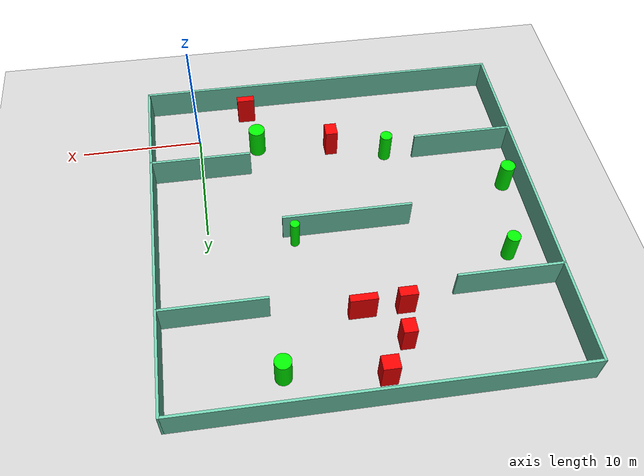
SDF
<sdf version="1.7">
 <world name="default">
  <light name="sun" type="directional">
   <pose>0 0 10 0 -0 0</pose>
   <diffuse>0.8 0.8 0.8 1</diffuse>
   <specular>0.2 0.2 0.2 1</specular>
   <attenuation>
    <range>1000</range>
    <constant>0.9</constant>
    <linear>0.01</linear>
    <quadratic>0.001</quadratic>
   </attenuation>
   <direction>-0.5 0.1 -0.9</direction>
   <spot><inner_angle>0</inner_angle><outer_angle>0</outer_angle><falloff>0</falloff></spot>
  </light>
  <model name="ground_plane">
   <static>1</static>
   <link name="link">
    <collision name="collision">
     <geometry><plane><normal>0 0 1</normal><size>100 100</size></plane></geometry>
     <surface>
      <contact><collide_bitmask>65535</collide_bitmask></contact>
      <friction><ode><mu>100</mu><mu2>50</mu2></ode></friction>
     </surface>
    </collision>
    <visual name="visual">
     <cast_shadows>0</cast_shadows>
     <geometry><plane><normal>0 0 1</normal><size>100 100</size></plane></geometry>
     <material>
      <script><uri>file://media/materials/scripts/gazebo.material</uri><name>Gazebo/Grey</name></script>
     </material>
    </visual>
   </link>
  </model>
  <gravity>0 0 -9.8</gravity>
  <magnetic_field>6e-06 2.3e-05 -4.2e-05</magnetic_field>
  <atmosphere type="adiabatic"/>
  <physics type="ode">
   <max_step_size>0.001</max_step_size>
   <real_time_factor>1</real_time_factor>
   <real_time_update_rate>1000</real_time_update_rate>
  </physics>
  <scene><ambient>0.4 0.4 0.4 1</ambient><background>0.7 0.7 0.7 1</background><shadows>1</shadows></scene>
  <spherical_coordinates>
   <surface_model>EARTH_WGS84</surface_model>
   <latitude_deg>0</latitude_deg>
   <longitude_deg>0</longitude_deg>
   <elevation>0</elevation>
   <heading_deg>0</heading_deg>
  </spherical_coordinates>
  <model name="my_base_walls">
   <link name="Wall_10">
    <collision name="Wall_10_Collision">
     <geometry><box><size>8.2 0.2 2.5</size></box></geometry>
     <pose>0 0 1.25 0 -0 0</pose>
    </collision>
    <visual name="Wall_10_Visual">
     <pose>0 0 1.25 0 -0 0</pose>
     <geometry><box><size>8.2 0.2 2.5</size></box></geometry>
     <material>
      <script><uri>file://media/materials/scripts/gazebo.material</uri><name>Gazebo/Grey</name></script>
      <ambient>0.435294 0.796078 0.67451 1</ambient>
     </material>
     <meta><layer>0</layer></meta>
    </visual>
    <pose>-11 -7 0 0 -0 0</pose>
   </link>
   <link name="Wall_12">
    <collision name="Wall_12_Collision">
     <geometry><box><size>8.2 0.2 2.5</size></box></geometry>
     <pose>0 0 1.25 0 -0 0</pose>
    </collision>
    <visual name="Wall_12_Visual">
     <pose>0 0 1.25 0 -0 0</pose>
     <geometry><box><size>8.2 0.2 2.5</size></box></geometry>
     <material>
      <script><uri>file://media/materials/scripts/gazebo.material</uri><name>Gazebo/Grey</name></script>
      <ambient>0.435294 0.796078 0.67451 1</ambient>
     </material>
     <meta><layer>0</layer></meta>
    </visual>
    <pose>-11 7 0 0 -0 0</pose>
   </link>
   <link name="Wall_14">
    <collision name="Wall_14_Collision">
     <geometry><box><size>8.2 0.2 2.5</size></box></geometry>
     <pose>0 0 1.25 0 -0 0</pose>
    </collision>
    <visual name="Wall_14_Visual">
     <pose>0 0 1.25 0 -0 0</pose>
     <geometry><box><size>8.2 0.2 2.5</size></box></geometry>
     <material>
      <script><uri>file://media/materials/scripts/gazebo.material</uri><name>Gazebo/Grey</name></script>
      <ambient>0.435294 0.796078 0.67451 1</ambient>
     </material>
     <meta><layer>0</layer></meta>
    </visual>
    <pose>11 7 0 0 -0 3.14159</pose>
   </link>
   <link name="Wall_16">
    <collision name="Wall_16_Collision">
     <geometry><box><size>10.2 0.2 2.5</size></box></geometry>
     <pose>0 0 1.25 0 -0 0</pose>
    </collision>
    <visual name="Wall_16_Visual">
     <pose>0 0 1.25 0 -0 0</pose>
     <geometry><box><size>10.2 0.2 2.5</size></box></geometry>
     <material>
      <script><uri>file://media/materials/scripts/gazebo.material</uri><name>Gazebo/Grey</name></script>
      <ambient>0.435294 0.796078 0.67451 1</ambient>
     </material>
     <meta><layer>0</layer></meta>
    </visual>
    <pose>0 0 0 0 -0 3.14159</pose>
   </link>
   <link name="Wall_2">
    <collision name="Wall_2_Collision">
     <geometry><box><size>30.2 0.2 2.5</size></box></geometry>
     <pose>0 0 1.25 0 -0 0</pose>
    </collision>
    <visual name="Wall_2_Visual">
     <pose>0 0 1.25 0 -0 0</pose>
     <geometry><box><size>30.2 0.2 2.5</size></box></geometry>
     <material>
      <script><uri>file://media/materials/scripts/gazebo.material</uri><name>Gazebo/Grey</name></script>
      <ambient>0.435294 0.796078 0.67451 1</ambient>
     </material>
     <meta><layer>0</layer></meta>
    </visual>
    <pose>0 -15 0 0 -0 3.14159</pose>
   </link>
   <link name="Wall_3">
    <collision name="Wall_3_Collision">
     <geometry><box><size>30.2 0.2 2.5</size></box></geometry>
     <pose>0 0 1.25 0 -0 0</pose>
    </collision>
    <visual name="Wall_3_Visual">
     <pose>0 0 1.25 0 -0 0</pose>
     <geometry><box><size>30.2 0.2 2.5</size></box></geometry>
     <material>
      <script><uri>file://media/materials/scripts/gazebo.material</uri><name>Gazebo/Grey</name></script>
      <ambient>0.435294 0.796078 0.67451 1</ambient>
     </material>
     <meta><layer>0</layer></meta>
    </visual>
    <pose>-15 0 0 0 -0 1.5708</pose>
   </link>
   <link name="Wall_4">
    <collision name="Wall_4_Collision">
     <geometry><box><size>30.2 0.2 2.5</size></box></geometry>
     <pose>0 0 1.25 0 -0 0</pose>
    </collision>
    <visual name="Wall_4_Visual">
     <pose>0 0 1.25 0 -0 0</pose>
     <geometry><box><size>30.2 0.2 2.5</size></box></geometry>
     <material>
      <script><uri>file://media/materials/scripts/gazebo.material</uri><name>Gazebo/Grey</name></script>
      <ambient>0.435294 0.796078 0.67451 1</ambient>
     </material>
     <meta><layer>0</layer></meta>
    </visual>
    <pose>0 15 0 0 -0 0</pose>
   </link>
   <link name="Wall_6">
    <collision name="Wall_6_Collision">
     <geometry><box><size>30.2 0.2 2.5</size></box></geometry>
     <pose>0 0 1.25 0 -0 0</pose>
    </collision>
    <visual name="Wall_6_Visual">
     <pose>0 0 1.25 0 -0 0</pose>
     <geometry><box><size>30.2 0.2 2.5</size></box></geometry>
     <material>
      <script><uri>file://media/materials/scripts/gazebo.material</uri><name>Gazebo/Grey</name></script>
      <ambient>0.435294 0.796078 0.67451 1</ambient>
     </material>
     <meta><layer>0</layer></meta>
    </visual>
    <pose>15 0 0 0 -0 1.5708</pose>
   </link>
   <link name="Wall_8">
    <collision name="Wall_8_Collision">
     <geometry><box><size>8.2 0.2 2.5</size></box></geometry>
     <pose>0 0 1.25 0 -0 0</pose>
    </collision>
    <visual name="Wall_8_Visual">
     <pose>0 0 1.25 0 -0 0</pose>
     <geometry><box><size>8.2 0.2 2.5</size></box></geometry>
     <material>
      <script><uri>file://media/materials/scripts/gazebo.material</uri><name>Gazebo/Grey</name></script>
      <ambient>0.435294 0.796078 0.67451 1</ambient>
     </material>
     <meta><layer>0</layer></meta>
    </visual>
    <pose>11 -7 0 0 -0 3.14159</pose>
   </link>
   <static>1</static>
   <pose>-11 11 0 0 -0 0</pose>
  </model>
  <model name="cylinder1">
   <static>1</static>
   <link name="link">
    <inertial>
     <mass>1</mass>
     <inertia><ixx>0.5</ixx><ixy>0</ixy><ixz>0</ixz><iyy>0.5</iyy><iyz>0</iyz><izz>1</izz></inertia>
    </inertial>
    <collision name="collision">
     <geometry><cylinder><radius>0.5291185613553617</radius><length>2.5</length></cylinder></geometry>
    </collision>
    <visual name="visual">
     <geometry><cylinder><radius>0.5291185613553617</radius><length>2.5</length></cylinder></geometry>
     <material>
      <ambient>0 1 0 1</ambient>
      <diffuse>0 1 0 1</diffuse>
      <specular>0.1 0.1 0.1 1</specular>
      <emissive>0 0 0 0</emissive>
     </material>
    </visual>
   </link>
   <pose>-23.04034496252381 15.147972844585372 1.25 0 0 0</pose>
  </model>
  <model name="cylinder2">
   <static>1</static>
   <link name="link">
    <inertial>
     <mass>1</mass>
     <inertia><ixx>0.5</ixx><ixy>0</ixy><ixz>0</ixz><iyy>0.5</iyy><iyz>0</iyz><izz>1</izz></inertia>
    </inertial>
    <collision name="collision">
     <geometry><cylinder><radius>0.4958200387499379</radius><length>2.5</length></cylinder></geometry>
    </collision>
    <visual name="visual">
     <geometry><cylinder><radius>0.4958200387499379</radius><length>2.5</length></cylinder></geometry>
     <material>
      <ambient>0 1 0 1</ambient>
      <diffuse>0 1 0 1</diffuse>
      <specular>0.1 0.1 0.1 1</specular>
      <emissive>0 0 0 0</emissive>
     </material>
    </visual>
   </link>
   <pose>-15.59825446553486 3.6055111562530744 1.25 0 0 0</pose>
  </model>
  <model name="cylinder3">
   <static>1</static>
   <link name="link">
    <inertial>
     <mass>1</mass>
     <inertia><ixx>0.5</ixx><ixy>0</ixy><ixz>0</ixz><iyy>0.5</iyy><iyz>0</iyz><izz>1</izz></inertia>
    </inertial>
    <collision name="collision">
     <geometry><cylinder><radius>0.3593438130944986</radius><length>2.5</length></cylinder></geometry>
    </collision>
    <visual name="visual">
     <geometry><cylinder><radius>0.3593438130944986</radius><length>2.5</length></cylinder></geometry>
     <material>
      <ambient>0 1 0 1</ambient>
      <diffuse>0 1 0 1</diffuse>
      <specular>0.1 0.1 0.1 1</specular>
      <emissive>0 0 0 0</emissive>
     </material>
    </visual>
   </link>
   <pose>-6.775503667326927 11.748642112053819 1.25 0 0 0</pose>
  </model>
  <model name="cylinder4">
   <static>1</static>
   <link name="link">
    <inertial>
     <mass>1</mass>
     <inertia><ixx>0.5</ixx><ixy>0</ixy><ixz>0</ixz><iyy>0.5</iyy><iyz>0</iyz><izz>1</izz></inertia>
    </inertial>
    <collision name="collision">
     <geometry><cylinder><radius>0.5870466984967351</radius><length>2.5</length></cylinder></geometry>
    </collision>
    <visual name="visual">
     <geometry><cylinder><radius>0.5870466984967351</radius><length>2.5</length></cylinder></geometry>
     <material>
      <ambient>0 1 0 1</ambient>
      <diffuse>0 1 0 1</diffuse>
      <specular>0.1 0.1 0.1 1</specular>
      <emissive>0 0 0 0</emissive>
     </material>
    </visual>
   </link>
   <pose>-24.704199564410057 8.227082678794162 1.25 0 0 0</pose>
  </model>
  <model name="cylinder5">
   <static>1</static>
   <link name="link">
    <inertial>
     <mass>1</mass>
     <inertia><ixx>0.5</ixx><ixy>0</ixy><ixz>0</ixz><iyy>0.5</iyy><iyz>0</iyz><izz>1</izz></inertia>
    </inertial>
    <collision name="collision">
     <geometry><cylinder><radius>0.6288909390662452</radius><length>2.5</length></cylinder></geometry>
    </collision>
    <visual name="visual">
     <geometry><cylinder><radius>0.6288909390662452</radius><length>2.5</length></cylinder></geometry>
     <material>
      <ambient>0 1 0 1</ambient>
      <diffuse>0 1 0 1</diffuse>
      <specular>0.1 0.1 0.1 1</specular>
      <emissive>0 0 0 0</emissive>
     </material>
    </visual>
   </link>
   <pose>-4.449870572014746 23.141984890072493 1.25 0 0 0</pose>
  </model>
  <model name="cylinder6">
   <static>1</static>
   <link name="link">
    <inertial>
     <mass>1</mass>
     <inertia><ixx>0.5</ixx><ixy>0</ixy><ixz>0</ixz><iyy>0.5</iyy><iyz>0</iyz><izz>1</izz></inertia>
    </inertial>
    <collision name="collision">
     <geometry><cylinder><radius>0.6692921108717587</radius><length>2.5</length></cylinder></geometry>
    </collision>
    <visual name="visual">
     <geometry><cylinder><radius>0.6692921108717587</radius><length>2.5</length></cylinder></geometry>
     <material>
      <ambient>0 1 0 1</ambient>
      <diffuse>0 1 0 1</diffuse>
      <specular>0.1 0.1 0.1 1</specular>
      <emissive>0 0 0 0</emissive>
     </material>
    </visual>
   </link>
   <pose>-4.893309531518529 1.457385890140861 1.25 0 0 0</pose>
  </model>
  <model name="box1">
   <static>1</static>
   <link name="link">
    <inertial>
     <mass>1</mass>
     <inertia><ixx>0.083</ixx><ixy>0</ixy><ixz>0</ixz><iyy>0.083</iyy><iyz>0</iyz><izz>0.083</izz></inertia>
    </inertial>
    <collision name="collision">
     <geometry><box><size>0.9928155046046345 1.1875321084759993 2.5</size></box></geometry>
    </collision>
    <visual name="visual">
     <geometry><box><size>0.9928155046046345 1.1875321084759993 2.5</size></box></geometry>
     <material>
      <ambient>1 0 0 1</ambient>
      <diffuse>1 0 0 1</diffuse>
      <specular>0.1 0.1 0.1 1</specular>
      <emissive>0 0 0 0</emissive>
     </material>
    </visual>
    <sensor name="my_contact" type="contact">
     <contact><collision>box_collision</collision><topic>__default_topic__</topic></contact>
    </sensor>
   </link>
   <pose>-11.109400624440624 2.2075029675776037 1.25 0 0 0</pose>
  </model>
  <model name="box2">
   <static>1</static>
   <link name="link">
    <inertial>
     <mass>1</mass>
     <inertia><ixx>0.083</ixx><ixy>0</ixy><ixz>0</ixz><iyy>0.083</iyy><iyz>0</iyz><izz>0.083</izz></inertia>
    </inertial>
    <collision name="collision">
     <geometry><box><size>1.262174206197643 1.0906403484439207 2.5</size></box></geometry>
    </collision>
    <visual name="visual">
     <geometry><box><size>1.262174206197643 1.0906403484439207 2.5</size></box></geometry>
     <material>
      <ambient>1 0 0 1</ambient>
      <diffuse>1 0 0 1</diffuse>
      <specular>0.1 0.1 0.1 1</specular>
      <emissive>0 0 0 0</emissive>
     </material>
    </visual>
    <sensor name="my_contact" type="contact">
     <contact><collision>box_collision</collision><topic>__default_topic__</topic></contact>
    </sensor>
   </link>
   <pose>-11.65048510502237 24.168263532023765 1.25 0 0 0</pose>
  </model>
  <model name="box3">
   <static>1</static>
   <link name="link">
    <inertial>
     <mass>1</mass>
     <inertia><ixx>0.083</ixx><ixy>0</ixy><ixz>0</ixz><iyy>0.083</iyy><iyz>0</iyz><izz>0.083</izz></inertia>
    </inertial>
    <collision name="collision">
     <geometry><box><size>2.0589341439842688 0.5722428040117902 2.5</size></box></geometry>
    </collision>
    <visual name="visual">
     <geometry><box><size>2.0589341439842688 0.5722428040117902 2.5</size></box></geometry>
     <material>
      <ambient>1 0 0 1</ambient>
      <diffuse>1 0 0 1</diffuse>
      <specular>0.1 0.1 0.1 1</specular>
      <emissive>0 0 0 0</emissive>
     </material>
    </visual>
    <sensor name="my_contact" type="contact">
     <contact><collision>box_collision</collision><topic>__default_topic__</topic></contact>
    </sensor>
   </link>
   <pose>-10.793281042539721 18.909952225471056 1.25 0 0 0</pose>
  </model>
  <model name="box4">
   <static>1</static>
   <link name="link">
    <inertial>
     <mass>1</mass>
     <inertia><ixx>0.083</ixx><ixy>0</ixy><ixz>0</ixz><iyy>0.083</iyy><iyz>0</iyz><izz>0.083</izz></inertia>
    </inertial>
    <collision name="collision">
     <geometry><box><size>1.457428300791384 0.5822029716621062 2.5</size></box></geometry>
    </collision>
    <visual name="visual">
     <geometry><box><size>1.457428300791384 0.5822029716621062 2.5</size></box></geometry>
     <material>
      <ambient>1 0 0 1</ambient>
      <diffuse>1 0 0 1</diffuse>
      <specular>0.1 0.1 0.1 1</specular>
      <emissive>0 0 0 0</emissive>
     </material>
    </visual>
    <sensor name="my_contact" type="contact">
     <contact><collision>box_collision</collision><topic>__default_topic__</topic></contact>
    </sensor>
   </link>
   <pose>-4.306132003984272 -2.4009900121537613 1.25 0 0 0</pose>
  </model>
  <model name="box5">
   <static>1</static>
   <link name="link">
    <inertial>
     <mass>1</mass>
     <inertia><ixx>0.083</ixx><ixy>0</ixy><ixz>0</ixz><iyy>0.083</iyy><iyz>0</iyz><izz>0.083</izz></inertia>
    </inertial>
    <collision name="collision">
     <geometry><box><size>1.029296081525029 1.127615777783182 2.5</size></box></geometry>
    </collision>
    <visual name="visual">
     <geometry><box><size>1.029296081525029 1.127615777783182 2.5</size></box></geometry>
     <material>
      <ambient>1 0 0 1</ambient>
      <diffuse>1 0 0 1</diffuse>
      <specular>0.1 0.1 0.1 1</specular>
      <emissive>0 0 0 0</emissive>
     </material>
    </visual>
    <sensor name="my_contact" type="contact">
     <contact><collision>box_collision</collision><topic>__default_topic__</topic></contact>
    </sensor>
   </link>
   <pose>-13.515491736591805 21.58887174126244 1.25 0 0 0</pose>
  </model>
  <model name="box6">
   <static>1</static>
   <link name="link">
    <inertial>
     <mass>1</mass>
     <inertia><ixx>0.083</ixx><ixy>0</ixy><ixz>0</ixz><iyy>0.083</iyy><iyz>0</iyz><izz>0.083</izz></inertia>
    </inertial>
    <collision name="collision">
     <geometry><box><size>1.3590167822487147 0.7652618646399004 2.5</size></box></geometry>
    </collision>
    <visual name="visual">
     <geometry><box><size>1.3590167822487147 0.7652618646399004 2.5</size></box></geometry>
     <material>
      <ambient>1 0 0 1</ambient>
      <diffuse>1 0 0 1</diffuse>
      <specular>0.1 0.1 0.1 1</specular>
      <emissive>0 0 0 0</emissive>
     </material>
    </visual>
    <sensor name="my_contact" type="contact">
     <contact><collision>box_collision</collision><topic>__default_topic__</topic></contact>
    </sensor>
   </link>
   <pose>-14.064710731485736 18.824634773090153 1.25 0 0 0</pose>
  </model>
 </world>
</sdf>
